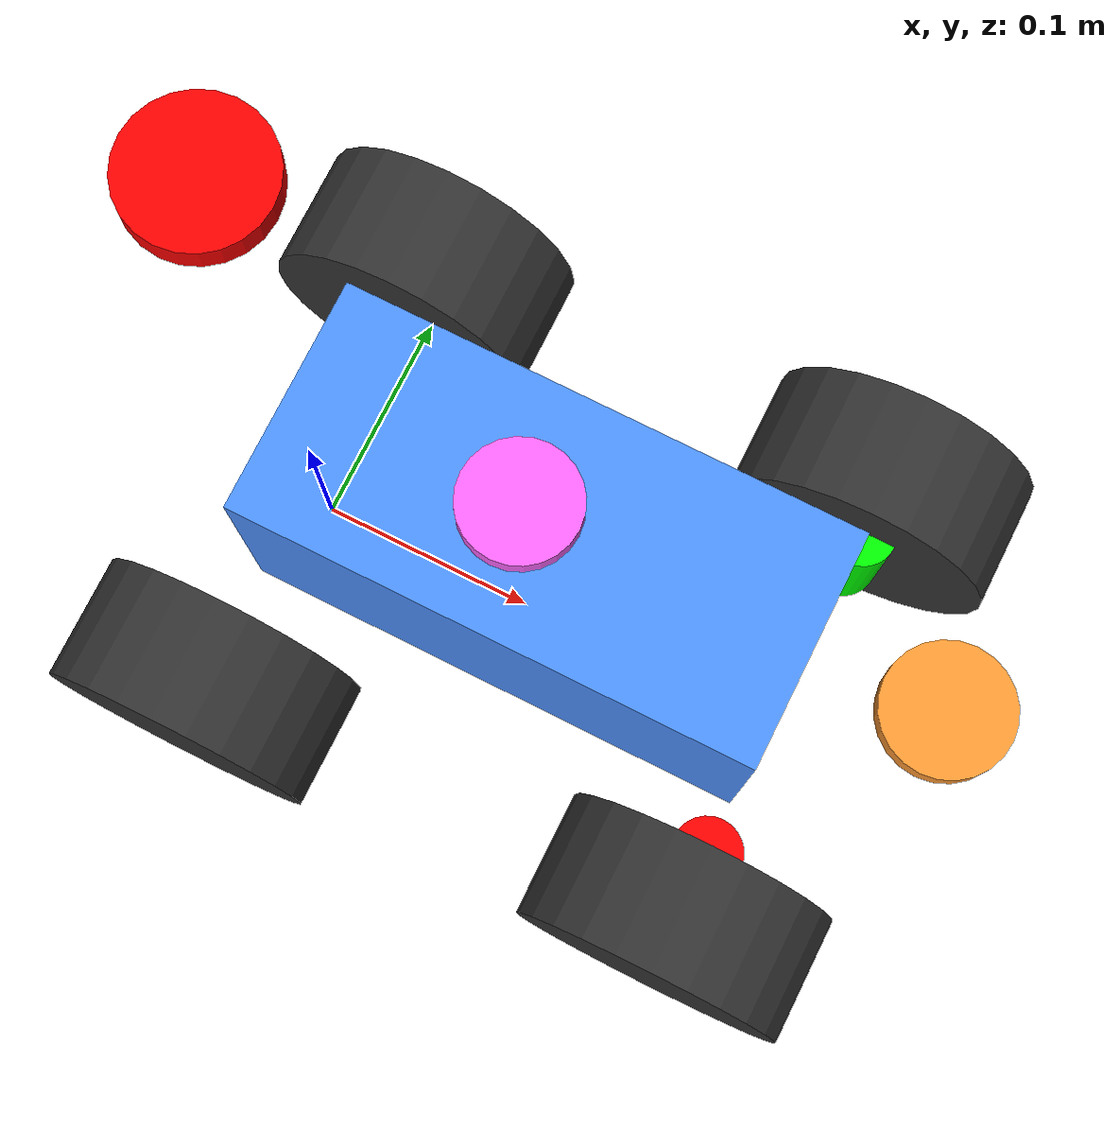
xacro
<?xml version="1.0"?>

<!-- A simple car-like model for gazebo -->

<robot name="sensor" xmlns:xacro="http://www.ros.org/wiki/xacro" >

  <xacro:property name="wheelbase" value="0.222" />
  <xacro:property name="width" value="0.100" />
  <xacro:property name="height" value="0.110" />
  <xacro:property name="ground_offset" value="0.070" />                 <!-- box model z_distancec above ground-->

  <xacro:property name="wheel_offset" value="0.025" />
  <xacro:property name="wheel_radius" value="0.06" />
  <xacro:property name="wheel_length" value="0.055" />

  <xacro:property name="laser_distance_from_base_link" value="0.275" /> <!-- along x-axis-->
  <xacro:property name="laser_height" value="0.05" />
  <xacro:property name="laser_radius" value="0.026" />

  <xacro:property name="imu_distance_from_base_link" value="0.1" />     <!-- along x-axis-->
  <xacro:property name="imu_height" value="0.01" />
  <xacro:property name="imu_radius" value="0.025" />

  <xacro:property name="gps_distance_from_base_link" value="0.0" />     <!-- along x-axis-->
  <xacro:property name="gps_distance_from_platform" value="0.2" />      <!-- along z-axis -->
  <xacro:property name="gps_model_height" value="0.01" />
  <xacro:property name="gps_model_radius" value="0.025" />

  <material name="black">
    <color rgba="0.2 0.2 0.2 1"/>
  </material>

  <material name="blue">
    <color rgba="0.3 0.57 1 1"/>
  </material>

  <material name="red">
    <color rgba="1 0 0 1"/>
  </material>

  <material name="orange">
    <color rgba="${255/255} ${153/255} ${51/255} 1.0"/>
  </material>

  <material name="green">
    <color rgba="${0/255} ${255/255} ${0/255} 1.0"/>
  </material>

  <material name="magenta">
    <color rgba="${255/255} ${102/255} ${255/255} 1.0"/>
  </material>

  ### base link
  <link name="base_link">
    <visual>
      <origin xyz="${wheelbase/2} 0 ${ground_offset+height/2}"/>    <!-- rectangular platform z_dist above ground-->
      <geometry>
        <box size="${wheelbase} ${width} ${height}"/>
      </geometry>
      <material name="blue"/>
    </visual>
  </link>

   ### imu
  <joint name="base_to_imu" type="fixed">
    <parent link="base_link"/>
    <child link="imu_sensor"/>
    <origin xyz="${imu_distance_from_base_link} 0 ${ground_offset+height+(imu_height/2)}"/>
  </joint>

  <link name="imu_sensor">
    <visual>
      <geometry>
        <cylinder radius="${imu_radius}" length="${imu_height}"/>
        <!--mesh filename="package://agbot_0/meshes/sorting_tray_centered.stl" scale="0.001 0.001 0.001"-->
      </geometry>
      <material name="magenta"/>
    </visual>
  </link>

  ### gps
  <joint name="base_to_gps" type="fixed">
    <parent link="base_link"/>
    <child link="gps_sensor"/>
    <origin xyz="${gps_distance_from_base_link} 0 ${ground_offset+height+(gps_model_height/2)+gps_distance_from_platform}"/>
  </joint>

  <link name="gps_sensor">
    <visual>
      <geometry>
        <cylinder radius="${gps_model_radius}" length="${gps_model_height}"/>
        <!--mesh filename="package://agbot_0/meshes/sorting_tray_centered.stl" scale="0.001 0.001 0.001"-->
      </geometry>
      <material name="red"/>
    </visual>
  </link>

  ### laser
  <joint name="base_to_laser_model" type="fixed">
    <parent link="base_link"/>
    <child link="laser_model"/>
    <origin xyz="${laser_distance_from_base_link} 0 ${ground_offset+height+(gps_model_height/2)}"/>
  </joint>

  <link name="laser_model">
    <visual>
      <geometry>
        <cylinder radius="${laser_radius}" length="${gps_model_height}"/>
        <!--mesh filename="package://agbot_0/meshes/sorting_tray_centered.stl" scale="0.001 0.001 0.001"-->
      </geometry>
      <material name="orange"/>
    </visual>
  </link>

  ### Back left wheel
  <joint name="base_to_back_left_wheel" type="continuous">
    <parent link="base_link"/>
    <child link="back_left_wheel"/>
    <origin xyz="0 ${(wheel_length+width)/2+wheel_offset} ${wheel_radius}"/>
    <axis xyz="0 1 0"/>
  </joint>

  <link name="back_left_wheel">
    <visual>
      <geometry>
        <cylinder radius="${wheel_radius}" length="${wheel_length}"/>
      </geometry>
      <material name="black"/>
      <origin rpy="${pi/2} 0 0"/>
    </visual>
  </link>

  ### Back right wheel
  <joint name="base_to_back_right_wheel" type="continuous">
    <parent link="base_link"/>
    <child link="back_right_wheel"/>
    <origin xyz="0 ${-(wheel_length+width)/2-wheel_offset} ${wheel_radius}"/>
    <axis xyz="0 1 0"/>
  </joint>

  <link name="back_right_wheel">
    <visual>
      <geometry>
        <cylinder radius="${wheel_radius}" length="${wheel_length}"/>
      </geometry>
      <material name="black"/>
      <origin rpy="${pi/2} 0 0"/>
    </visual>
  </link>

<!-- Front left wheel description -->
  ### base to
  ### front left wheel steering hinge joint (this pivots the wheel direction)
  <joint name="base_to_front_left_hinge" type="continuous">
    <parent link="base_link"/>
    <child link="front_left_hinge"/>
    <origin xyz="${wheelbase} ${(width)/2+wheel_offset} ${wheel_radius}"/>
    <axis xyz="0 0 1"/>
  </joint>

  ### front left steering hinge link
  <link name="front_left_hinge">
     <visual>
      <geometry>
        <cylinder radius="${wheel_radius/4}" length="${wheel_radius}"/>
      </geometry>
      <material name="green"/>
      <origin rpy="0 0 0"/>
    </visual>
  </link>

  ### left wheel steering hinge to
  ### left wheel joint (this joint allows the wheel to roll)
  <joint name="front_left_hinge_to_wheel" type="continuous">
    <parent link="front_left_hinge"/>
    <child link="front_left_wheel"/>
    <axis xyz="0 1 0"/>
    <origin xyz="0 ${(wheel_length)/2} 0"/>
  </joint>

  ### front left wheel visual
  <link name="front_left_wheel">
    <visual>
      <geometry>
        <cylinder radius="${wheel_radius}" length="${wheel_length}"/>
      </geometry>
      <material name="black"/>
      <origin rpy="${pi/2} 0 0" xyz="0 0 0"/>
    </visual>
  </link>

<!--Front Right wheel description-->
  ### base to
  ### front right wheel steering hinge joint (this pivots the wheel direction)
  <joint name="base_to_front_right_hinge" type="continuous">
    <parent link="base_link"/>
    <child link="front_right_hinge"/>
    <origin xyz="${wheelbase} ${-(width)/2-wheel_offset} ${wheel_radius}"/>
    <axis xyz="0 0 1"/>
  </joint>

### front right steering hinge link
  <link name="front_right_hinge">
     <visual>
      <geometry>
        <cylinder radius="${wheel_radius/4}" length="${wheel_radius}"/>
      </geometry>
      <material name="red"/>
      <origin rpy="0 0 0"/>
    </visual>
  </link>

  ### right wheel steering hinge to
  ### right wheel joint (this joint allows the wheel to roll)
  <joint name="front_right_hinge_to_wheel" type="continuous">
    <parent link="front_right_hinge"/>
    <child link="front_right_wheel"/>
    <axis xyz="0 1 0"/>
    <origin xyz="0 ${-(wheel_length)/2} 0"/>
  </joint>

  ### front right wheel link/visual
  <link name="front_right_wheel">
    <visual>
      <geometry>
        <cylinder radius="${wheel_radius}" length="${wheel_length}"/>
      </geometry>
      <material name="black"/>
      <origin rpy="${pi/2} 0 0" xyz="0 0 0" />
    </visual>
  </link>

 <gazebo reference="sensor">
    <material>Gazebo/Orange</material>
  </gazebo>

</robot>
